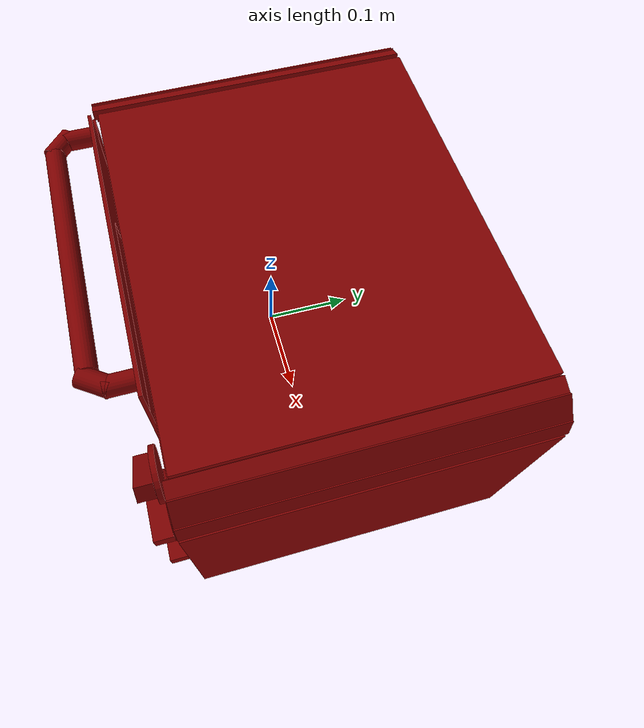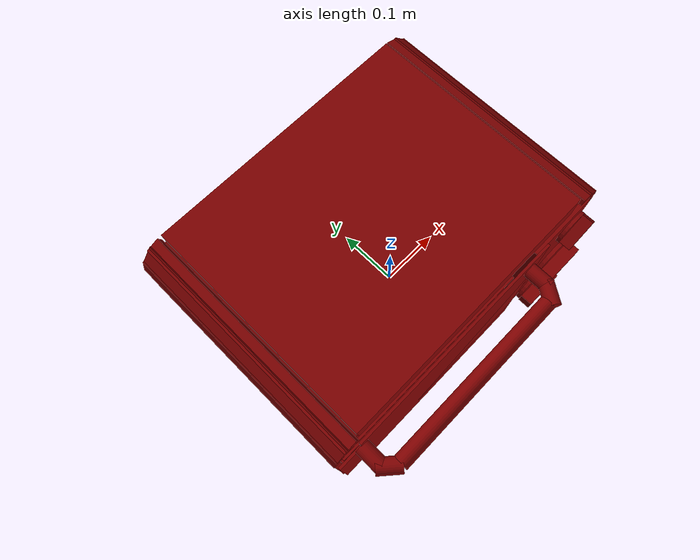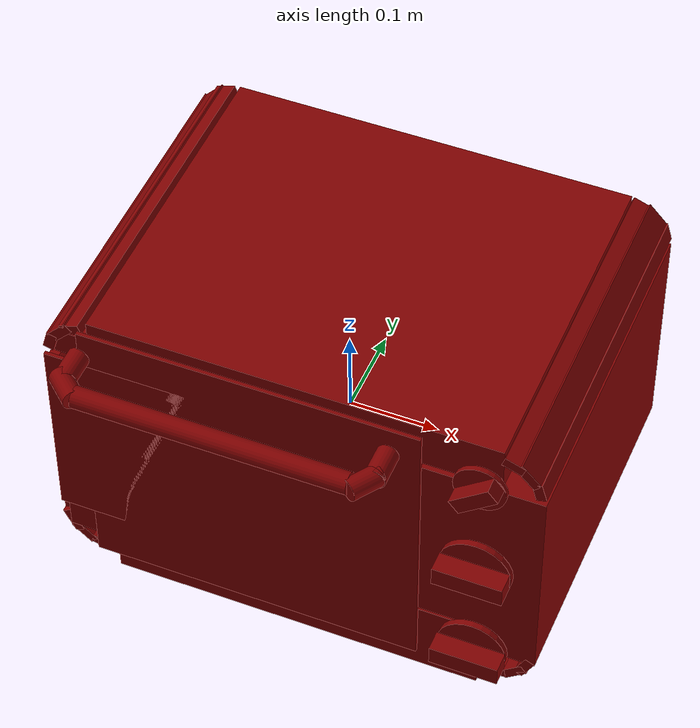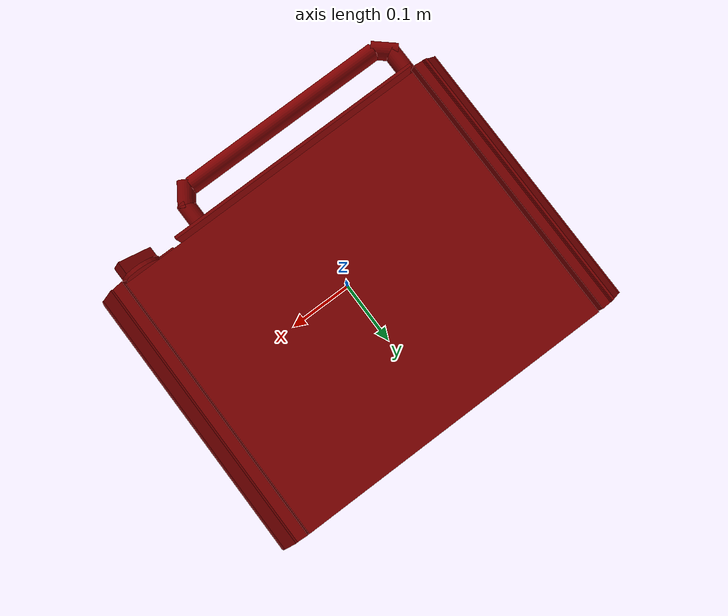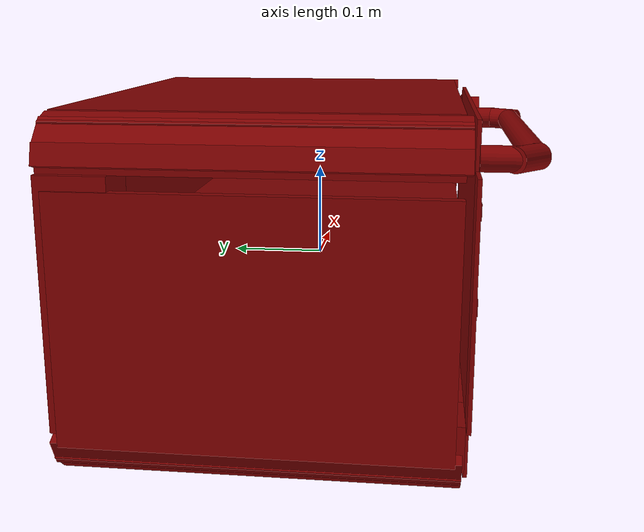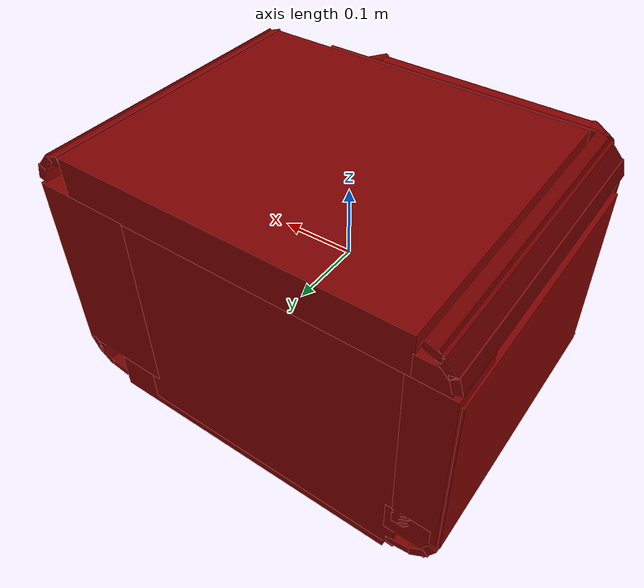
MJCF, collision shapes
<?xml version='1.0' encoding='UTF-8'?>
<mujoco model="model">
  <option timestep="0.002" gravity="0.0 0.0 -9.81"/>
  <compiler angle="radian"/>
  <asset>
    <mesh file="visuals/Body001.obj" name="Body001_vis"/>
    <mesh file="visuals/Door001.obj" name="Door001_vis"/>
    <mesh file="visuals/Door001_Clear.obj" name="Door001_Clear_vis"/>
    <mesh file="visuals/Knob001.obj" name="Knob001_vis"/>
    <mesh file="visuals/Knob002.obj" name="Knob002_vis"/>
    <mesh file="visuals/Knob003.obj" name="Knob003_vis"/>
    <mesh file="visuals/Shelf001.obj" name="Shelf001_vis"/>
    <mesh file="visuals/Shelf002.obj" name="Shelf002_vis"/>
    <mesh file="visuals/Shelf003.obj" name="Shelf003_vis"/>
    <texture file="visuals/T_BC001.png" name="Body001_material" type="2d"/>
    <material name="Body001_material" rgba="1 1 1 1.0" texture="Body001_material" shininess="0.141421377658844" specular="2"/>
    <texture file="visuals/T_BC001.png" name="Door001_material" type="2d"/>
    <material name="Door001_material" rgba="1 1 1 1.0" texture="Door001_material" shininess="0.141421377658844" specular="2"/>
    <material name="Door001_Clear_material" rgba="0.014353806152939796 0.014353806152939796 0.014353806152939796 0.800000011920929" shininess="0.5" specular="0.3103448502657381"/>
    <texture file="visuals/T_BC001.png" name="Knob001_material" type="2d"/>
    <material name="Knob001_material" rgba="1 1 1 1.0" texture="Knob001_material" shininess="0.141421377658844" specular="0.3103448502657381"/>
    <texture file="visuals/T_BC001.png" name="Knob002_material" type="2d"/>
    <material name="Knob002_material" rgba="1 1 1 1.0" texture="Knob002_material" shininess="0.141421377658844" specular="0.3103448502657381"/>
    <texture file="visuals/T_BC001.png" name="Knob003_material" type="2d"/>
    <material name="Knob003_material" rgba="1 1 1 1.0" texture="Knob003_material" shininess="0.141421377658844" specular="0.3103448502657381"/>
    <texture file="visuals/T_BC001.png" name="Shelf001_material" type="2d"/>
    <material name="Shelf001_material" rgba="1 1 1 1.0" texture="Shelf001_material" shininess="0.141421377658844" specular="3"/>
    <texture file="visuals/T_BC001.png" name="Shelf002_material" type="2d"/>
    <material name="Shelf002_material" rgba="1 1 1 1.0" texture="Shelf002_material" shininess="0.141421377658844" specular="3"/>
    <texture file="visuals/T_BC001.png" name="Shelf003_material" type="2d"/>
    <material name="Shelf003_material" rgba="1 1 1 1.0" texture="Shelf003_material" shininess="0.141421377658844" specular="3"/>
  </asset>
  <default>
    <default class="visual">
      <geom conaffinity="0" contype="0" group="1" type="mesh"/>
    </default>
    <default class="collision">
      <geom group="0" rgba="0.5 0 0 0.5"/>
    </default>
    <default class="spawn">
      <geom group="0" rgba="1 1 1 0.5" contype="0" conaffinity="0"/>
      <site group="0" rgba="1 1 1 0.5"/>
    </default>
    <default class="region">
      <geom group="1" conaffinity="0" contype="0" rgba="0 1 0 0"/>
    </default>
  </default>
  <worldbody>
    <body>
      <body name="object">
        <geom mesh="Body001_vis" type="mesh" solimp="0.998 0.998 0.001" solref="0.001 1" friction="0.95 0.3 0.1" class="visual" material="Body001_material"/>
        <geom class="collision" type="box" pos="-0.268939 0.033798 -0.006662" size="0.005601328797638416 0.18849171698093414 0.12430782616138458" quat="1.0 0.0 0.0 0.0" density="1000.0"/>
        <geom class="collision" type="box" pos="0.001060 0.037260 0.158577" size="0.22587746381759644 0.19240780174732208 0.027097681537270546" quat="1.0 0.0 0.0 0.0" density="1000.0"/>
        <geom class="collision" type="box" pos="-0.033142 0.195324 0.002486" size="0.1881600171327591 0.03434368968009949 0.17576533555984497" quat="1.0 0.0 0.0 0.0" density="1000.0"/>
        <geom class="collision" type="box" pos="0.208435 0.034410 0.001528" size="0.06616947054862976 0.1952582150697708 0.13139744102954865" quat="1.0 0.0 0.0 0.0" density="1000.0"/>
        <geom class="collision" type="box" pos="0.002127 0.033270 -0.139787" size="0.2095610350370407 0.1963975876569748 0.045887529850006104" quat="1.0 0.0 0.0 0.0" density="1000.0"/>
        <geom class="collision" type="box" pos="-0.243915 0.195324 0.006809" size="0.027898499742150307 0.03434377908706665 0.1249300166964531" quat="1.0 0.0 0.0 0.0" density="1000.0"/>
        <geom class="collision" type="box" pos="0.266073 0.034410 0.149355" size="0.005701002664864063 0.19525861740112305 0.010545930825173855" quat="0.9905286431312561 0.0 -0.13730615377426147 0.0" density="1000.0"/>
        <geom class="collision" type="box" pos="0.254003 0.034410 0.166540" size="0.005701003130525351 0.19525861740112305 0.01522292010486126" quat="0.9298465847969055 0.0 -0.367947518825531 0.0" density="1000.0"/>
        <geom class="collision" type="box" pos="0.238462 0.034410 0.176025" size="0.005701002199202776 0.19525861740112305 0.011500685475766659" quat="0.8193817734718323 0.0 -0.5732482075691223 0.0" density="1000.0"/>
        <geom class="collision" type="box" pos="-0.240344 0.034410 0.175996" size="0.005701002199202776 0.19525861740112305 0.011416911147534847" quat="0.8193817734718323 0.0 0.5732482075691223 0.0" density="1000.0"/>
        <geom class="collision" type="box" pos="-0.252892 0.034410 0.166540" size="0.005701002199202776 0.19525861740112305 0.01522291824221611" quat="0.9298465847969055 0.0 0.36794745922088623 0.0" density="1000.0"/>
        <geom class="collision" type="box" pos="-0.265507 0.034410 0.149093" size="0.005701002199202776 0.19525861740112305 0.01081868913024664" quat="0.9905286431312561 0.0 0.13730613887310028 0.0" density="1000.0"/>
        <geom class="collision" type="box" pos="0.227516 0.034410 -0.162192" size="0.005701003130525351 0.19525861740112305 0.01522292010486126" quat="0.7667765617370605 0.0 0.6419140696525574 0.0" density="1000.0"/>
        <geom class="collision" type="box" pos="0.251382 0.034410 -0.152520" size="0.005701003130525351 0.19525861740112305 0.01522292010486126" quat="0.9076850414276123 0.0 0.41965213418006897 0.0" density="1000.0"/>
        <geom class="collision" type="box" pos="0.262884 0.034410 -0.138778" size="0.005701002664864063 0.19525861740112305 0.014126131311058998" quat="0.9724284410476685 0.0 0.23320159316062927 0.0" density="1000.0"/>
        <geom class="collision" type="box" pos="-0.262448 0.034410 -0.137800" size="0.005701002199202776 0.19525861740112305 0.01522291824221611" quat="0.9724283814430237 0.0 -0.23320169746875763 0.0" density="1000.0"/>
        <geom class="collision" type="box" pos="-0.250448 0.034410 -0.152520" size="0.005701003130525351 0.19525861740112305 0.01522292010486126" quat="0.9076850414276123 0.0 -0.4196521043777466 0.0" density="1000.0"/>
        <geom class="collision" type="box" pos="-0.226583 0.034410 -0.162192" size="0.005701003130525351 0.19525861740112305 0.01522292010486126" quat="0.7667765617370605 0.0 -0.6419140696525574 0.0" density="1000.0"/>
        <geom class="collision" type="box" pos="-0.235729 0.033270 -0.116998" size="0.028293801471590996 0.1963978111743927 0.02309822291135788" quat="1.0 0.0 0.0 0.0" density="1000.0"/>
        <geom class="collision" type="box" pos="-0.243501 0.037260 0.146886" size="0.020677296444773674 0.19240796566009521 0.015406477265059948" quat="1.0 0.0 0.0 0.0" density="1000.0"/>
        <body name="Door001">
          <joint axis="1.0 0.0 0.0" pos="-0.038714 -0.166369 -0.161083" limited="true" name="Door001_joint" range="0.0 1.5707963267948966" type="hinge" damping="1" frictionloss="1" armature=".01" stiffness="2" springref="-1"/>
          <geom mesh="Door001_vis" type="mesh" solimp="0.998 0.998 0.001" solref="0.001 1" friction="0.95 0.3 0.1" class="visual" material="Door001_material"/>
          <geom class="collision" type="box" pos="-0.043090 -0.165964 0.010045" size="0.18725378811359406 0.00207867962308228 0.1716434359550476" quat="1.0 0.0 0.0 0.0" density="1000.0"/>
          <geom class="collision" type="cylinder" pos="-0.229244 -0.185743 0.147451" size="0.012058169580996037 0.01855606399476528" quat="0.7071067094802856 0.7071068286895752 0.0 0.0" density="1000.0"/>
          <geom class="collision" type="cylinder" pos="0.110198 -0.185743 0.147451" size="0.012058169580996037 0.01855606399476528" quat="0.7071067094802856 0.7071068286895752 0.0 0.0" density="1000.0"/>
          <geom class="collision" type="cylinder" pos="-0.060027 -0.217997 0.147451" size="0.012058175168931484 0.1497878134250641" quat="0.4999999701976776 0.5 0.5 0.5" density="1000.0"/>
          <geom class="collision" type="cylinder" pos="0.101958 -0.211455 0.147451" size="0.012058169580996037 0.01855606399476528" quat="0.6759129762649536 0.6759130358695984 -0.20770560204982758 -0.20770560204982758" density="1000.0"/>
          <geom class="collision" type="cylinder" pos="-0.222052 -0.209787 0.147451" size="0.012058169580996037 0.01855606399476528" quat="0.6447701454162598 0.6447701454162598 0.29029548168182373 0.29029545187950134" density="1000.0"/>
          <body name="Door001_Clear">
            <geom mesh="Door001_Clear_vis" type="mesh" solimp="0.998 0.998 0.001" solref="0.001 1" friction="0.95 0.3 0.1" class="visual" material="Door001_Clear_material"/>
            <geom class="collision" type="box" pos="-0.062998 -0.165964 0.018477" size="0.2071613371372223 0.00207867962308228 0.11743299663066864" quat="1.0 0.0 0.0 0.0" density="1000.0"/>
          </body>
        </body>
        <body name="Knob001">
          <joint axis="0.0 1.0 0.0" pos="0.207643 -0.173498 0.138134" limited="true" name="Knob001_joint" range="0.0 4.537856055185257" type="hinge" damping="0.05" armature="0.001"/>
          <geom mesh="Knob001_vis" type="mesh" solimp="0.998 0.998 0.001" solref="0.001 1" friction="0.95 0.3 0.1" class="visual" material="Knob001_material"/>
          <geom class="collision" type="cylinder" pos="0.207785 -0.167841 0.138958" size="0.028440658003091812 0.0028505877126008272" quat="0.7071067094802856 0.7071068286895752 0.0 0.0" density="1000.0"/>
          <geom class="collision" type="box" pos="0.207914 -0.180110 0.140265" size="0.026221206411719322 0.009177393279969692 0.008678785525262356" quat="0.9421400427818298 2.305953601759161e-15 -0.3352195620536804 1.1474083905227417e-08" density="1000.0"/>
        </body>
        <body name="Knob002">
          <joint axis="0.0 1.0 0.0" pos="0.207659 -0.175936 0.014250" limited="true" name="Knob002_joint" range="0.0 3.2288591161895095" type="hinge" damping="0.05" armature="0.001"/>
          <geom mesh="Knob002_vis" type="mesh" solimp="0.998 0.998 0.001" solref="0.001 1" friction="0.95 0.3 0.1" class="visual" material="Knob002_material"/>
          <geom class="collision" type="cylinder" pos="0.207785 -0.170203 0.014018" size="0.03941282629966736 0.0035079747904092073" quat="0.7071067094802856 0.7071068286895752 0.0 0.0" density="1000.0"/>
          <geom class="collision" type="box" pos="0.207667 -0.185547 0.014698" size="0.038112059235572815 0.01136291678994894 0.01161499135196209" quat="1.0 0.0 0.0 0.0" density="1000.0"/>
        </body>
        <body name="Knob003">
          <joint axis="0.0 1.0 0.0" pos="0.207667 -0.175937 -0.118176" limited="true" name="Knob003_joint" range="0.0 3.0543261909900767" type="hinge" damping="0.05" armature="0.001"/>
          <geom mesh="Knob003_vis" type="mesh" solimp="0.998 0.998 0.001" solref="0.001 1" friction="0.95 0.3 0.1" class="visual" material="Knob003_material"/>
          <geom class="collision" type="cylinder" pos="0.207785 -0.169445 -0.118216" size="0.038067303597927094 0.0035079747904092073" quat="0.7071067094802856 0.7071068286895752 0.0 0.0" density="1000.0"/>
          <geom class="collision" type="box" pos="0.207667 -0.185547 -0.118857" size="0.038112059235572815 0.01136291678994894 0.011614996008574963" quat="1.0 0.0 0.0 0.0" density="1000.0"/>
        </body>
        <body name="Shelf001">
          <joint axis="0.0 -1.0 0.0" pos="-0.059539 -0.003189 0.125365" limited="true" name="Shelf001_joint" range="0.0 0.25" type="slide" damping="1" frictionloss="1" armature=".01" stiffness="0.05"/>
          <geom mesh="Shelf001_vis" type="mesh" solimp="0.998 0.998 0.001" solref="0.001 1" friction="0.95 0.3 0.1" class="visual" material="Shelf001_material"/>
          <geom class="collision" type="box" pos="-0.073086 -0.011018 0.076565" size="0.18589335680007935 0.14421804249286652 0.00292502180673182" quat="1.0 0.0 0.0 0.0" density="1000.0"/>
        </body>
        <body name="Shelf002">
          <joint axis="0.0 -1.0 0.0" pos="-0.060806 -0.003189 0.016826" limited="true" name="Shelf002_joint" range="0.0 0.25" type="slide" damping="1" frictionloss="1" armature=".01" stiffness="0.05"/>
          <geom mesh="Shelf002_vis" type="mesh" solimp="0.998 0.998 0.001" solref="0.001 1" friction="0.95 0.3 0.1" class="visual" material="Shelf002_material"/>
          <geom class="collision" type="box" pos="-0.073086 -0.011018 0.012585" size="0.18589335680007935 0.14421804249286652 0.00292502180673182" quat="1.0 0.0 0.0 0.0" density="1000.0"/>
        </body>
        <body name="Shelf003">
          <joint axis="0.0 -1.0 0.0" pos="-0.060806 -0.003189 -0.047073" limited="true" name="Shelf003_joint" range="0.0 0.25" type="slide" damping="1" frictionloss="1" armature=".01" stiffness="0.05"/>
          <geom mesh="Shelf003_vis" type="mesh" solimp="0.998 0.998 0.001" solref="0.001 1" friction="0.95 0.3 0.1" class="visual" material="Shelf003_material"/>
          <geom class="collision" type="box" pos="-0.073086 -0.011018 -0.051179" size="0.18589335680007935 0.14421804249286652 0.00292502180673182" quat="1.0 0.0 0.0 0.0" density="1000.0"/>
        </body>
        <geom class="region" name="reg_int" type="box" pos="-0.060520000000000004 0.006559000000000009 0.0191715" size="0.20299099999999998 0.155359 0.1136625"/>
        <geom class="region" name="reg_main" type="box" pos="0.0 0.0316245 0.0" size="0.274604 0.1980435 0.185675"/>
      </body>
    </body>
  </worldbody>
  <actuator>
    <motor name="Door001_joint_actuator" joint="Door001_joint" gear="50"/>
    <motor name="Knob001_joint_actuator" joint="Knob001_joint" gear="50"/>
    <motor name="Knob002_joint_actuator" joint="Knob002_joint" gear="50"/>
    <motor name="Knob003_joint_actuator" joint="Knob003_joint" gear="50"/>
    <motor name="Shelf001_joint_actuator" joint="Shelf001_joint" gear="50"/>
    <motor name="Shelf002_joint_actuator" joint="Shelf002_joint" gear="50"/>
    <motor name="Shelf003_joint_actuator" joint="Shelf003_joint" gear="50"/>
  </actuator>
</mujoco>
